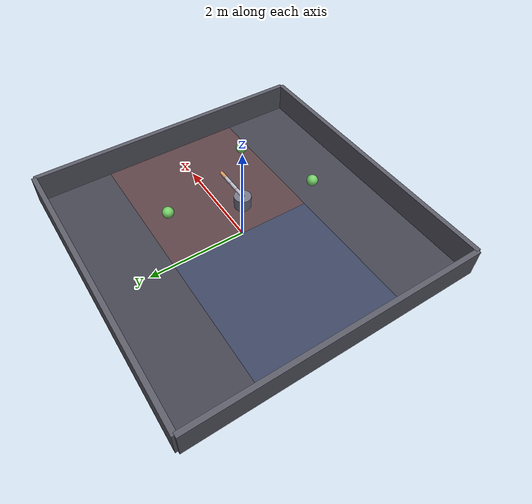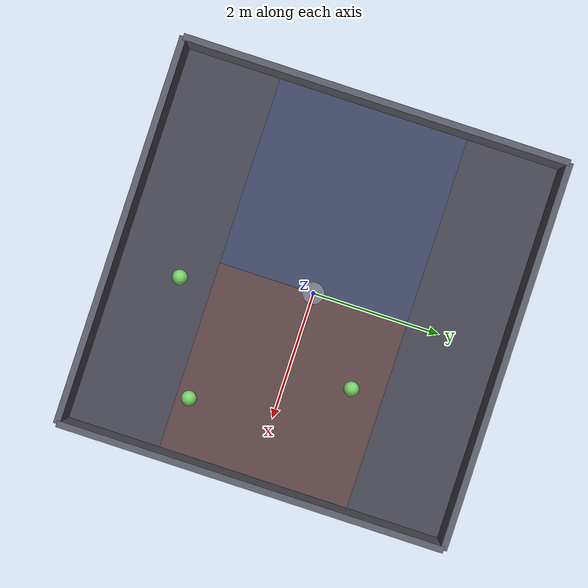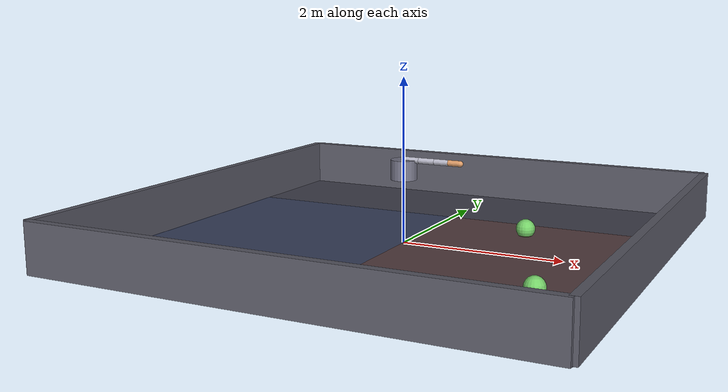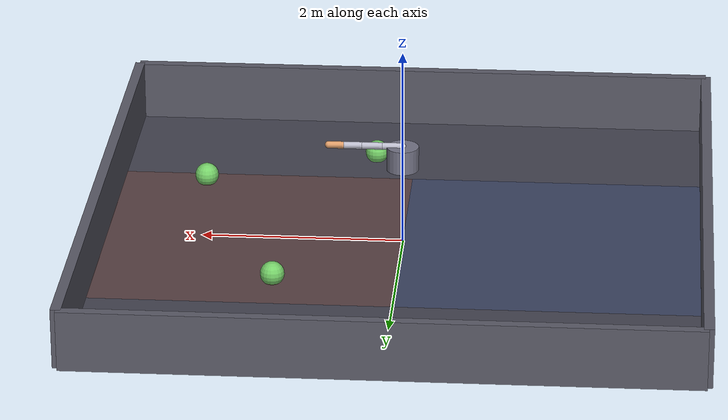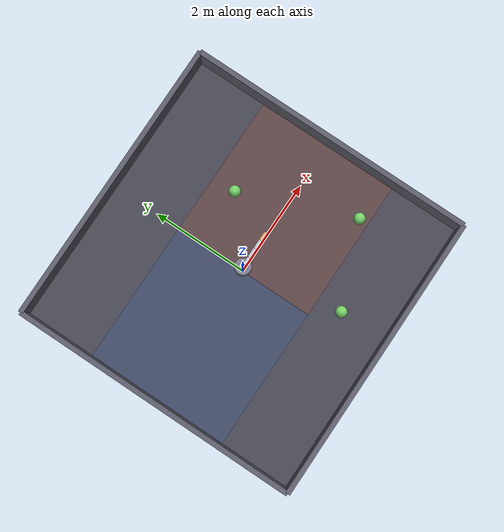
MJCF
<mujoco model="fen_stage2">

  <compiler angle="radian" autolimits="true"/>
  <option timestep="0.005" gravity="0 0 -9.81" integrator="implicitfast"/>

  <default>
    <joint damping="0.6" armature="0.02"/>
    <geom type="capsule" size="0.035" rgba="0.72 0.72 0.78 1" density="900"/>
    <motor ctrlrange="-2.5 2.5" gear="1"/>
  </default>

  <worldbody>
    <light pos="0 0 3" dir="0 0 -1"/>
    <geom name="floor" type="plane" size="3 3 0.1" pos="0 0 0" rgba="0.26 0.26 0.31 1"/>

    <!-- Zone markers: visual only, no collision. The agent never reads these;
         it must infer the thermal gradient from its own interoception. -->
    <geom name="warm_marker" type="box" size="1.5 1.5 0.001" pos="1.5 0 0.001"
          rgba="0.55 0.28 0.22 0.35" contype="0" conaffinity="0"/>
    <geom name="cool_marker" type="box" size="1.5 1.5 0.001" pos="-1.5 0 0.001"
          rgba="0.22 0.32 0.55 0.35" contype="0" conaffinity="0"/>

    <!-- Arena walls -->
    <geom name="w_px" type="box" size="0.05 3 0.3" pos="3 0 0.3" rgba="0.35 0.35 0.4 1"/>
    <geom name="w_nx" type="box" size="0.05 3 0.3" pos="-3 0 0.3" rgba="0.35 0.35 0.4 1"/>
    <geom name="w_py" type="box" size="3 0.05 0.3" pos="0 3 0.3" rgba="0.35 0.35 0.4 1"/>
    <geom name="w_ny" type="box" size="3 0.05 0.3" pos="0 -3 0.3" rgba="0.35 0.35 0.4 1"/>

    <!-- Base height must exceed total arm length (0.73m) or the arm droops
         through the floor, jams, and anchors the whole body in place. -->
    <body name="base" pos="0 0 0.90">
      <joint name="bx" type="slide" axis="1 0 0" range="-2.7 2.7" damping="6"/>
      <joint name="by" type="slide" axis="0 1 0" range="-2.7 2.7" damping="6"/>
      <geom name="base_geom" type="cylinder" size="0.16 0.12" rgba="0.45 0.45 0.52 1"
            density="1200"/>

      <body name="l1" pos="0 0 0.12">
        <joint name="j1" type="hinge" axis="0 0 1" range="-3.0 3.0"/>
        <geom fromto="0 0 0 0.20 0 0"/>

        <body name="l2" pos="0.20 0 0">
          <joint name="j2" type="hinge" axis="0 1 0" range="-2.2 2.2"/>
          <geom fromto="0 0 0 0.20 0 0"/>

          <body name="l3" pos="0.20 0 0">
            <joint name="j3" type="hinge" axis="0 1 0" range="-2.2 2.2"/>
            <geom fromto="0 0 0 0.18 0 0"/>

            <body name="l4" pos="0.18 0 0">
              <joint name="j4" type="hinge" axis="0 1 0" range="-2.2 2.2"/>
              <geom name="tip_geom" fromto="0 0 0 0.15 0 0" rgba="0.85 0.6 0.4 1"/>
              <site name="tip" pos="0.15 0 0" size="0.03" rgba="0.9 0.7 0.4 1"/>
            </body>
          </body>
        </body>
      </body>
    </body>

    <!-- Food sites. Visual only; depletion and regrowth are bookkeeping in
         drives.py, and reaching one requires the arm tip to be near it. -->
    <body name="food0" pos="1.2 1.0 0.08" mocap="true">
      <geom type="sphere" size="0.12" rgba="0.45 0.8 0.4 1" contype="0" conaffinity="0"/>
    </body>
    <body name="food1" pos="2.1 -1.3 0.08" mocap="true">
      <geom type="sphere" size="0.12" rgba="0.45 0.8 0.4 1" contype="0" conaffinity="0"/>
    </body>
    <body name="food2" pos="0.4 -2.0 0.08" mocap="true">
      <geom type="sphere" size="0.12" rgba="0.45 0.8 0.4 1" contype="0" conaffinity="0"/>
    </body>
  </worldbody>

  <actuator>
    <!-- Base: velocity control, travel is cheap to learn -->
    <velocity name="vx" joint="bx" kv="12" ctrlrange="-1.2 1.2"/>
    <velocity name="vy" joint="by" kv="12" ctrlrange="-1.2 1.2"/>
    <!-- Arm: torque control, dynamics carried over from Stage 1 -->
    <motor name="m1" joint="j1"/>
    <motor name="m2" joint="j2"/>
    <motor name="m3" joint="j3"/>
    <motor name="m4" joint="j4"/>
  </actuator>

  <sensor>
    <framepos name="tip_pos" objtype="site" objname="tip"/>
  </sensor>
</mujoco>
